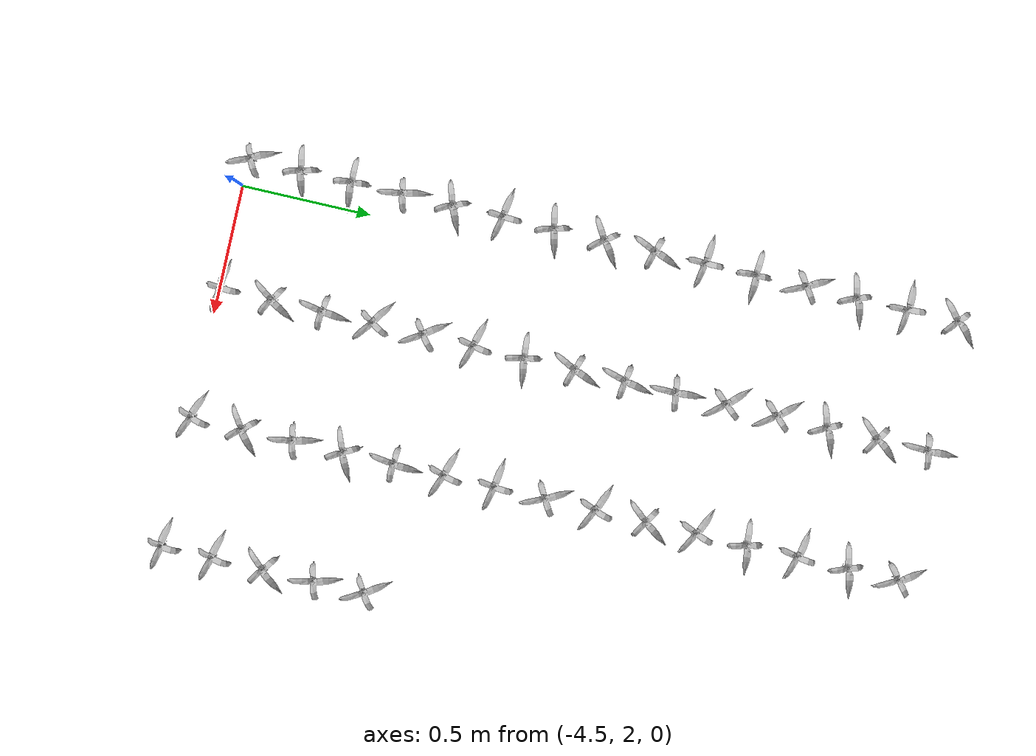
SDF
<sdf version="1.7">
 <world name="default">
  <model name="maize_-4.6_2.0250000000000004">
   <static>1</static>
   <link name="link">
    <inertial>
     <mass>0.2</mass>
     <inertia>
      <ixx>0.166667</ixx>
      <ixy>0</ixy>
      <ixz>0</ixz>
      <iyy>0.166667</iyy>
      <iyz>0</iyz>
      <izz>0.166667</izz>
     </inertia>
    </inertial>
    <collision name="collision">
     <geometry><mesh><uri>model://corn_3/meshes/corn.dae</uri><scale>0.25 0.25 0.25</scale></mesh></geometry>
     <surface>
      <friction><ode><mu>0</mu><mu2>0</mu2></ode></friction>
      <contact><ode><kp>0</kp><kd>0</kd><max_vel>0</max_vel><min_depth>0.002</min_depth></ode></contact>
     </surface>
    </collision>
    <visual name="visual">
     <geometry><mesh><uri>model://corn_3/meshes/corn.dae</uri><scale>0.25 0.25 0.25</scale></mesh></geometry>
    </visual>
    <velocity_decay><linear>0</linear><angular>0</angular></velocity_decay>
   </link>
   <pose>-4.6 2.025 0.05 0 -0 2.03613</pose>
  </model>
  <model name="maize_-4.6_2.2200000000000006">
   <static>1</static>
   <link name="link">
    <inertial>
     <mass>0.2</mass>
     <inertia>
      <ixx>0.166667</ixx>
      <ixy>0</ixy>
      <ixz>0</ixz>
      <iyy>0.166667</iyy>
      <iyz>0</iyz>
      <izz>0.166667</izz>
     </inertia>
    </inertial>
    <collision name="collision">
     <geometry><mesh><uri>model://corn_3/meshes/corn.dae</uri><scale>0.25 0.25 0.25</scale></mesh></geometry>
     <surface>
      <friction><ode><mu>0</mu><mu2>0</mu2></ode></friction>
      <contact><ode><kp>0</kp><kd>0</kd><max_vel>0</max_vel><min_depth>0.002</min_depth></ode></contact>
     </surface>
    </collision>
    <visual name="visual">
     <geometry><mesh><uri>model://corn_3/meshes/corn.dae</uri><scale>0.25 0.25 0.25</scale></mesh></geometry>
    </visual>
    <velocity_decay><linear>0</linear><angular>0</angular></velocity_decay>
   </link>
   <pose>-4.6 2.22 0.05 0 -0 0.292338</pose>
  </model>
  <model name="maize_-4.6_2.415">
   <static>1</static>
   <link name="link">
    <inertial>
     <mass>0.2</mass>
     <inertia>
      <ixx>0.166667</ixx>
      <ixy>0</ixy>
      <ixz>0</ixz>
      <iyy>0.166667</iyy>
      <iyz>0</iyz>
      <izz>0.166667</izz>
     </inertia>
    </inertial>
    <collision name="collision">
     <geometry><mesh><uri>model://corn_3/meshes/corn.dae</uri><scale>0.25 0.25 0.25</scale></mesh></geometry>
     <surface>
      <friction><ode><mu>0</mu><mu2>0</mu2></ode></friction>
      <contact><ode><kp>0</kp><kd>0</kd><max_vel>0</max_vel><min_depth>0.002</min_depth></ode></contact>
     </surface>
    </collision>
    <visual name="visual">
     <geometry><mesh><uri>model://corn_3/meshes/corn.dae</uri><scale>0.25 0.25 0.25</scale></mesh></geometry>
    </visual>
    <velocity_decay><linear>0</linear><angular>0</angular></velocity_decay>
   </link>
   <pose>-4.6 2.415 0.05 0 -0 0.102796</pose>
  </model>
  <model name="maize_-4.6_2.6100000000000003">
   <static>1</static>
   <link name="link">
    <inertial>
     <mass>0.2</mass>
     <inertia>
      <ixx>0.166667</ixx>
      <ixy>0</ixy>
      <ixz>0</ixz>
      <iyy>0.166667</iyy>
      <iyz>0</iyz>
      <izz>0.166667</izz>
     </inertia>
    </inertial>
    <collision name="collision">
     <geometry><mesh><uri>model://corn_3/meshes/corn.dae</uri><scale>0.25 0.25 0.25</scale></mesh></geometry>
     <surface>
      <friction><ode><mu>0</mu><mu2>0</mu2></ode></friction>
      <contact><ode><kp>0</kp><kd>0</kd><max_vel>0</max_vel><min_depth>0.002</min_depth></ode></contact>
     </surface>
    </collision>
    <visual name="visual">
     <geometry><mesh><uri>model://corn_3/meshes/corn.dae</uri><scale>0.25 0.25 0.25</scale></mesh></geometry>
    </visual>
    <velocity_decay><linear>0</linear><angular>0</angular></velocity_decay>
   </link>
   <pose>-4.6 2.61 0.05 0 -0 1.79182</pose>
  </model>
  <model name="maize_-4.6_2.8050000000000006">
   <static>1</static>
   <link name="link">
    <inertial>
     <mass>0.2</mass>
     <inertia>
      <ixx>0.166667</ixx>
      <ixy>0</ixy>
      <ixz>0</ixz>
      <iyy>0.166667</iyy>
      <iyz>0</iyz>
      <izz>0.166667</izz>
     </inertia>
    </inertial>
    <collision name="collision">
     <geometry><mesh><uri>model://corn_3/meshes/corn.dae</uri><scale>0.25 0.25 0.25</scale></mesh></geometry>
     <surface>
      <friction><ode><mu>0</mu><mu2>0</mu2></ode></friction>
      <contact><ode><kp>0</kp><kd>0</kd><max_vel>0</max_vel><min_depth>0.002</min_depth></ode></contact>
     </surface>
    </collision>
    <visual name="visual">
     <geometry><mesh><uri>model://corn_3/meshes/corn.dae</uri><scale>0.25 0.25 0.25</scale></mesh></geometry>
    </visual>
    <velocity_decay><linear>0</linear><angular>0</angular></velocity_decay>
   </link>
   <pose>-4.6 2.805 0.05 0 -0 0.430393</pose>
  </model>
  <model name="maize_-4.6_3.000000000000001">
   <static>1</static>
   <link name="link">
    <inertial>
     <mass>0.2</mass>
     <inertia>
      <ixx>0.166667</ixx>
      <ixy>0</ixy>
      <ixz>0</ixz>
      <iyy>0.166667</iyy>
      <iyz>0</iyz>
      <izz>0.166667</izz>
     </inertia>
    </inertial>
    <collision name="collision">
     <geometry><mesh><uri>model://corn_3/meshes/corn.dae</uri><scale>0.25 0.25 0.25</scale></mesh></geometry>
     <surface>
      <friction><ode><mu>0</mu><mu2>0</mu2></ode></friction>
      <contact><ode><kp>0</kp><kd>0</kd><max_vel>0</max_vel><min_depth>0.002</min_depth></ode></contact>
     </surface>
    </collision>
    <visual name="visual">
     <geometry><mesh><uri>model://corn_3/meshes/corn.dae</uri><scale>0.25 0.25 0.25</scale></mesh></geometry>
    </visual>
    <velocity_decay><linear>0</linear><angular>0</angular></velocity_decay>
   </link>
   <pose>-4.6 3 0.05 0 -0 3.01194</pose>
  </model>
  <model name="maize_-4.6_3.1950000000000003">
   <static>1</static>
   <link name="link">
    <inertial>
     <mass>0.2</mass>
     <inertia>
      <ixx>0.166667</ixx>
      <ixy>0</ixy>
      <ixz>0</ixz>
      <iyy>0.166667</iyy>
      <iyz>0</iyz>
      <izz>0.166667</izz>
     </inertia>
    </inertial>
    <collision name="collision">
     <geometry><mesh><uri>model://corn_3/meshes/corn.dae</uri><scale>0.25 0.25 0.25</scale></mesh></geometry>
     <surface>
      <friction><ode><mu>0</mu><mu2>0</mu2></ode></friction>
      <contact><ode><kp>0</kp><kd>0</kd><max_vel>0</max_vel><min_depth>0.002</min_depth></ode></contact>
     </surface>
    </collision>
    <visual name="visual">
     <geometry><mesh><uri>model://corn_3/meshes/corn.dae</uri><scale>0.25 0.25 0.25</scale></mesh></geometry>
    </visual>
    <velocity_decay><linear>0</linear><angular>0</angular></velocity_decay>
   </link>
   <pose>-4.6 3.195 0.05 0 -0 0.275425</pose>
  </model>
  <model name="maize_-4.6_3.3899999999999997">
   <static>1</static>
   <link name="link">
    <inertial>
     <mass>0.2</mass>
     <inertia>
      <ixx>0.166667</ixx>
      <ixy>0</ixy>
      <ixz>0</ixz>
      <iyy>0.166667</iyy>
      <iyz>0</iyz>
      <izz>0.166667</izz>
     </inertia>
    </inertial>
    <collision name="collision">
     <geometry><mesh><uri>model://corn_3/meshes/corn.dae</uri><scale>0.25 0.25 0.25</scale></mesh></geometry>
     <surface>
      <friction><ode><mu>0</mu><mu2>0</mu2></ode></friction>
      <contact><ode><kp>0</kp><kd>0</kd><max_vel>0</max_vel><min_depth>0.002</min_depth></ode></contact>
     </surface>
    </collision>
    <visual name="visual">
     <geometry><mesh><uri>model://corn_3/meshes/corn.dae</uri><scale>0.25 0.25 0.25</scale></mesh></geometry>
    </visual>
    <velocity_decay><linear>0</linear><angular>0</angular></velocity_decay>
   </link>
   <pose>-4.6 3.39 0.05 0 -0 0.641586</pose>
  </model>
  <model name="maize_-4.6_3.585">
   <static>1</static>
   <link name="link">
    <inertial>
     <mass>0.2</mass>
     <inertia>
      <ixx>0.166667</ixx>
      <ixy>0</ixy>
      <ixz>0</ixz>
      <iyy>0.166667</iyy>
      <iyz>0</iyz>
      <izz>0.166667</izz>
     </inertia>
    </inertial>
    <collision name="collision">
     <geometry><mesh><uri>model://corn_3/meshes/corn.dae</uri><scale>0.25 0.25 0.25</scale></mesh></geometry>
     <surface>
      <friction><ode><mu>0</mu><mu2>0</mu2></ode></friction>
      <contact><ode><kp>0</kp><kd>0</kd><max_vel>0</max_vel><min_depth>0.002</min_depth></ode></contact>
     </surface>
    </collision>
    <visual name="visual">
     <geometry><mesh><uri>model://corn_3/meshes/corn.dae</uri><scale>0.25 0.25 0.25</scale></mesh></geometry>
    </visual>
    <velocity_decay><linear>0</linear><angular>0</angular></velocity_decay>
   </link>
   <pose>-4.6 3.585 0.05 0 -0 1.2305</pose>
  </model>
  <model name="maize_-4.6_3.7800000000000002">
   <static>1</static>
   <link name="link">
    <inertial>
     <mass>0.2</mass>
     <inertia>
      <ixx>0.166667</ixx>
      <ixy>0</ixy>
      <ixz>0</ixz>
      <iyy>0.166667</iyy>
      <iyz>0</iyz>
      <izz>0.166667</izz>
     </inertia>
    </inertial>
    <collision name="collision">
     <geometry><mesh><uri>model://corn_3/meshes/corn.dae</uri><scale>0.25 0.25 0.25</scale></mesh></geometry>
     <surface>
      <friction><ode><mu>0</mu><mu2>0</mu2></ode></friction>
      <contact><ode><kp>0</kp><kd>0</kd><max_vel>0</max_vel><min_depth>0.002</min_depth></ode></contact>
     </surface>
    </collision>
    <visual name="visual">
     <geometry><mesh><uri>model://corn_3/meshes/corn.dae</uri><scale>0.25 0.25 0.25</scale></mesh></geometry>
    </visual>
    <velocity_decay><linear>0</linear><angular>0</angular></velocity_decay>
   </link>
   <pose>-4.6 3.78 0.05 0 -0 3.0599</pose>
  </model>
  <model name="maize_-4.6_3.9750000000000005">
   <static>1</static>
   <link name="link">
    <inertial>
     <mass>0.2</mass>
     <inertia>
      <ixx>0.166667</ixx>
      <ixy>0</ixy>
      <ixz>0</ixz>
      <iyy>0.166667</iyy>
      <iyz>0</iyz>
      <izz>0.166667</izz>
     </inertia>
    </inertial>
    <collision name="collision">
     <geometry><mesh><uri>model://corn_3/meshes/corn.dae</uri><scale>0.25 0.25 0.25</scale></mesh></geometry>
     <surface>
      <friction><ode><mu>0</mu><mu2>0</mu2></ode></friction>
      <contact><ode><kp>0</kp><kd>0</kd><max_vel>0</max_vel><min_depth>0.002</min_depth></ode></contact>
     </surface>
    </collision>
    <visual name="visual">
     <geometry><mesh><uri>model://corn_3/meshes/corn.dae</uri><scale>0.25 0.25 0.25</scale></mesh></geometry>
    </visual>
    <velocity_decay><linear>0</linear><angular>0</angular></velocity_decay>
   </link>
   <pose>-4.6 3.975 0.05 0 -0 0.019402</pose>
  </model>
  <model name="maize_-4.6_4.170000000000001">
   <static>1</static>
   <link name="link">
    <inertial>
     <mass>0.2</mass>
     <inertia>
      <ixx>0.166667</ixx>
      <ixy>0</ixy>
      <ixz>0</ixz>
      <iyy>0.166667</iyy>
      <iyz>0</iyz>
      <izz>0.166667</izz>
     </inertia>
    </inertial>
    <collision name="collision">
     <geometry><mesh><uri>model://corn_3/meshes/corn.dae</uri><scale>0.25 0.25 0.25</scale></mesh></geometry>
     <surface>
      <friction><ode><mu>0</mu><mu2>0</mu2></ode></friction>
      <contact><ode><kp>0</kp><kd>0</kd><max_vel>0</max_vel><min_depth>0.002</min_depth></ode></contact>
     </surface>
    </collision>
    <visual name="visual">
     <geometry><mesh><uri>model://corn_3/meshes/corn.dae</uri><scale>0.25 0.25 0.25</scale></mesh></geometry>
    </visual>
    <velocity_decay><linear>0</linear><angular>0</angular></velocity_decay>
   </link>
   <pose>-4.6 4.17 0.05 0 -0 2.08204</pose>
  </model>
  <model name="maize_-4.6_4.365000000000001">
   <static>1</static>
   <link name="link">
    <inertial>
     <mass>0.2</mass>
     <inertia>
      <ixx>0.166667</ixx>
      <ixy>0</ixy>
      <ixz>0</ixz>
      <iyy>0.166667</iyy>
      <iyz>0</iyz>
      <izz>0.166667</izz>
     </inertia>
    </inertial>
    <collision name="collision">
     <geometry><mesh><uri>model://corn_3/meshes/corn.dae</uri><scale>0.25 0.25 0.25</scale></mesh></geometry>
     <surface>
      <friction><ode><mu>0</mu><mu2>0</mu2></ode></friction>
      <contact><ode><kp>0</kp><kd>0</kd><max_vel>0</max_vel><min_depth>0.002</min_depth></ode></contact>
     </surface>
    </collision>
    <visual name="visual">
     <geometry><mesh><uri>model://corn_3/meshes/corn.dae</uri><scale>0.25 0.25 0.25</scale></mesh></geometry>
    </visual>
    <velocity_decay><linear>0</linear><angular>0</angular></velocity_decay>
   </link>
   <pose>-4.6 4.365 0.05 0 -0 0.353595</pose>
  </model>
  <model name="maize_-4.6_4.56">
   <static>1</static>
   <link name="link">
    <inertial>
     <mass>0.2</mass>
     <inertia>
      <ixx>0.166667</ixx>
      <ixy>0</ixy>
      <ixz>0</ixz>
      <iyy>0.166667</iyy>
      <iyz>0</iyz>
      <izz>0.166667</izz>
     </inertia>
    </inertial>
    <collision name="collision">
     <geometry><mesh><uri>model://corn_3/meshes/corn.dae</uri><scale>0.25 0.25 0.25</scale></mesh></geometry>
     <surface>
      <friction><ode><mu>0</mu><mu2>0</mu2></ode></friction>
      <contact><ode><kp>0</kp><kd>0</kd><max_vel>0</max_vel><min_depth>0.002</min_depth></ode></contact>
     </surface>
    </collision>
    <visual name="visual">
     <geometry><mesh><uri>model://corn_3/meshes/corn.dae</uri><scale>0.25 0.25 0.25</scale></mesh></geometry>
    </visual>
    <velocity_decay><linear>0</linear><angular>0</angular></velocity_decay>
   </link>
   <pose>-4.6 4.56 0.05 0 -0 3.13578</pose>
  </model>
  <model name="maize_-4.6_4.755">
   <static>1</static>
   <link name="link">
    <inertial>
     <mass>0.2</mass>
     <inertia>
      <ixx>0.166667</ixx>
      <ixy>0</ixy>
      <ixz>0</ixz>
      <iyy>0.166667</iyy>
      <iyz>0</iyz>
      <izz>0.166667</izz>
     </inertia>
    </inertial>
    <collision name="collision">
     <geometry><mesh><uri>model://corn_3/meshes/corn.dae</uri><scale>0.25 0.25 0.25</scale></mesh></geometry>
     <surface>
      <friction><ode><mu>0</mu><mu2>0</mu2></ode></friction>
      <contact><ode><kp>0</kp><kd>0</kd><max_vel>0</max_vel><min_depth>0.002</min_depth></ode></contact>
     </surface>
    </collision>
    <visual name="visual">
     <geometry><mesh><uri>model://corn_3/meshes/corn.dae</uri><scale>0.25 0.25 0.25</scale></mesh></geometry>
    </visual>
    <velocity_decay><linear>0</linear><angular>0</angular></velocity_decay>
   </link>
   <pose>-4.6 4.755 0.05 0 -0 0.784792</pose>
  </model>
  <model name="maize_-4.100375_2.0250000000000004">
   <static>1</static>
   <link name="link">
    <inertial>
     <mass>0.2</mass>
     <inertia>
      <ixx>0.166667</ixx>
      <ixy>0</ixy>
      <ixz>0</ixz>
      <iyy>0.166667</iyy>
      <iyz>0</iyz>
      <izz>0.166667</izz>
     </inertia>
    </inertial>
    <collision name="collision">
     <geometry><mesh><uri>model://corn_3/meshes/corn.dae</uri><scale>0.25 0.25 0.25</scale></mesh></geometry>
     <surface>
      <friction><ode><mu>0</mu><mu2>0</mu2></ode></friction>
      <contact><ode><kp>0</kp><kd>0</kd><max_vel>0</max_vel><min_depth>0.002</min_depth></ode></contact>
     </surface>
    </collision>
    <visual name="visual">
     <geometry><mesh><uri>model://corn_3/meshes/corn.dae</uri><scale>0.25 0.25 0.25</scale></mesh></geometry>
    </visual>
    <velocity_decay><linear>0</linear><angular>0</angular></velocity_decay>
   </link>
   <pose>-4.10037 2.025 0.05 0 -0 3.05292</pose>
  </model>
  <model name="maize_-4.100375_2.2200000000000006">
   <static>1</static>
   <link name="link">
    <inertial>
     <mass>0.2</mass>
     <inertia>
      <ixx>0.166667</ixx>
      <ixy>0</ixy>
      <ixz>0</ixz>
      <iyy>0.166667</iyy>
      <iyz>0</iyz>
      <izz>0.166667</izz>
     </inertia>
    </inertial>
    <collision name="collision">
     <geometry><mesh><uri>model://corn_3/meshes/corn.dae</uri><scale>0.25 0.25 0.25</scale></mesh></geometry>
     <surface>
      <friction><ode><mu>0</mu><mu2>0</mu2></ode></friction>
      <contact><ode><kp>0</kp><kd>0</kd><max_vel>0</max_vel><min_depth>0.002</min_depth></ode></contact>
     </surface>
    </collision>
    <visual name="visual">
     <geometry><mesh><uri>model://corn_3/meshes/corn.dae</uri><scale>0.25 0.25 0.25</scale></mesh></geometry>
    </visual>
    <velocity_decay><linear>0</linear><angular>0</angular></velocity_decay>
   </link>
   <pose>-4.10037 2.22 0.05 0 -0 1.03773</pose>
  </model>
  <model name="maize_-4.100375_2.415">
   <static>1</static>
   <link name="link">
    <inertial>
     <mass>0.2</mass>
     <inertia>
      <ixx>0.166667</ixx>
      <ixy>0</ixy>
      <ixz>0</ixz>
      <iyy>0.166667</iyy>
      <iyz>0</iyz>
      <izz>0.166667</izz>
     </inertia>
    </inertial>
    <collision name="collision">
     <geometry><mesh><uri>model://corn_3/meshes/corn.dae</uri><scale>0.25 0.25 0.25</scale></mesh></geometry>
     <surface>
      <friction><ode><mu>0</mu><mu2>0</mu2></ode></friction>
      <contact><ode><kp>0</kp><kd>0</kd><max_vel>0</max_vel><min_depth>0.002</min_depth></ode></contact>
     </surface>
    </collision>
    <visual name="visual">
     <geometry><mesh><uri>model://corn_3/meshes/corn.dae</uri><scale>0.25 0.25 0.25</scale></mesh></geometry>
    </visual>
    <velocity_decay><linear>0</linear><angular>0</angular></velocity_decay>
   </link>
   <pose>-4.10037 2.415 0.05 0 -0 1.47364</pose>
  </model>
  <model name="maize_-4.100375_2.6100000000000003">
   <static>1</static>
   <link name="link">
    <inertial>
     <mass>0.2</mass>
     <inertia>
      <ixx>0.166667</ixx>
      <ixy>0</ixy>
      <ixz>0</ixz>
      <iyy>0.166667</iyy>
      <iyz>0</iyz>
      <izz>0.166667</izz>
     </inertia>
    </inertial>
    <collision name="collision">
     <geometry><mesh><uri>model://corn_3/meshes/corn.dae</uri><scale>0.25 0.25 0.25</scale></mesh></geometry>
     <surface>
      <friction><ode><mu>0</mu><mu2>0</mu2></ode></friction>
      <contact><ode><kp>0</kp><kd>0</kd><max_vel>0</max_vel><min_depth>0.002</min_depth></ode></contact>
     </surface>
    </collision>
    <visual name="visual">
     <geometry><mesh><uri>model://corn_3/meshes/corn.dae</uri><scale>0.25 0.25 0.25</scale></mesh></geometry>
    </visual>
    <velocity_decay><linear>0</linear><angular>0</angular></velocity_decay>
   </link>
   <pose>-4.10037 2.61 0.05 0 -0 2.56701</pose>
  </model>
  <model name="maize_-4.100375_2.8050000000000006">
   <static>1</static>
   <link name="link">
    <inertial>
     <mass>0.2</mass>
     <inertia>
      <ixx>0.166667</ixx>
      <ixy>0</ixy>
      <ixz>0</ixz>
      <iyy>0.166667</iyy>
      <iyz>0</iyz>
      <izz>0.166667</izz>
     </inertia>
    </inertial>
    <collision name="collision">
     <geometry><mesh><uri>model://corn_3/meshes/corn.dae</uri><scale>0.25 0.25 0.25</scale></mesh></geometry>
     <surface>
      <friction><ode><mu>0</mu><mu2>0</mu2></ode></friction>
      <contact><ode><kp>0</kp><kd>0</kd><max_vel>0</max_vel><min_depth>0.002</min_depth></ode></contact>
     </surface>
    </collision>
    <visual name="visual">
     <geometry><mesh><uri>model://corn_3/meshes/corn.dae</uri><scale>0.25 0.25 0.25</scale></mesh></geometry>
    </visual>
    <velocity_decay><linear>0</linear><angular>0</angular></velocity_decay>
   </link>
   <pose>-4.10037 2.805 0.05 0 -0 2.21319</pose>
  </model>
  <model name="maize_-4.100375_3.000000000000001">
   <static>1</static>
   <link name="link">
    <inertial>
     <mass>0.2</mass>
     <inertia>
      <ixx>0.166667</ixx>
      <ixy>0</ixy>
      <ixz>0</ixz>
      <iyy>0.166667</iyy>
      <iyz>0</iyz>
      <izz>0.166667</izz>
     </inertia>
    </inertial>
    <collision name="collision">
     <geometry><mesh><uri>model://corn_3/meshes/corn.dae</uri><scale>0.25 0.25 0.25</scale></mesh></geometry>
     <surface>
      <friction><ode><mu>0</mu><mu2>0</mu2></ode></friction>
      <contact><ode><kp>0</kp><kd>0</kd><max_vel>0</max_vel><min_depth>0.002</min_depth></ode></contact>
     </surface>
    </collision>
    <visual name="visual">
     <geometry><mesh><uri>model://corn_3/meshes/corn.dae</uri><scale>0.25 0.25 0.25</scale></mesh></geometry>
    </visual>
    <velocity_decay><linear>0</linear><angular>0</angular></velocity_decay>
   </link>
   <pose>-4.10037 3 0.05 0 -0 2.9102</pose>
  </model>
  <model name="maize_-4.100375_3.1950000000000003">
   <static>1</static>
   <link name="link">
    <inertial>
     <mass>0.2</mass>
     <inertia>
      <ixx>0.166667</ixx>
      <ixy>0</ixy>
      <ixz>0</ixz>
      <iyy>0.166667</iyy>
      <iyz>0</iyz>
      <izz>0.166667</izz>
     </inertia>
    </inertial>
    <collision name="collision">
     <geometry><mesh><uri>model://corn_3/meshes/corn.dae</uri><scale>0.25 0.25 0.25</scale></mesh></geometry>
     <surface>
      <friction><ode><mu>0</mu><mu2>0</mu2></ode></friction>
      <contact><ode><kp>0</kp><kd>0</kd><max_vel>0</max_vel><min_depth>0.002</min_depth></ode></contact>
     </surface>
    </collision>
    <visual name="visual">
     <geometry><mesh><uri>model://corn_3/meshes/corn.dae</uri><scale>0.25 0.25 0.25</scale></mesh></geometry>
    </visual>
    <velocity_decay><linear>0</linear><angular>0</angular></velocity_decay>
   </link>
   <pose>-4.10037 3.195 0.05 0 -0 0.169667</pose>
  </model>
  <model name="maize_-4.100375_3.3899999999999997">
   <static>1</static>
   <link name="link">
    <inertial>
     <mass>0.2</mass>
     <inertia>
      <ixx>0.166667</ixx>
      <ixy>0</ixy>
      <ixz>0</ixz>
      <iyy>0.166667</iyy>
      <iyz>0</iyz>
      <izz>0.166667</izz>
     </inertia>
    </inertial>
    <collision name="collision">
     <geometry><mesh><uri>model://corn_3/meshes/corn.dae</uri><scale>0.25 0.25 0.25</scale></mesh></geometry>
     <surface>
      <friction><ode><mu>0</mu><mu2>0</mu2></ode></friction>
      <contact><ode><kp>0</kp><kd>0</kd><max_vel>0</max_vel><min_depth>0.002</min_depth></ode></contact>
     </surface>
    </collision>
    <visual name="visual">
     <geometry><mesh><uri>model://corn_3/meshes/corn.dae</uri><scale>0.25 0.25 0.25</scale></mesh></geometry>
    </visual>
    <velocity_decay><linear>0</linear><angular>0</angular></velocity_decay>
   </link>
   <pose>-4.10037 3.39 0.05 0 -0 1.19928</pose>
  </model>
  <model name="maize_-4.100375_3.585">
   <static>1</static>
   <link name="link">
    <inertial>
     <mass>0.2</mass>
     <inertia>
      <ixx>0.166667</ixx>
      <ixy>0</ixy>
      <ixz>0</ixz>
      <iyy>0.166667</iyy>
      <iyz>0</iyz>
      <izz>0.166667</izz>
     </inertia>
    </inertial>
    <collision name="collision">
     <geometry><mesh><uri>model://corn_3/meshes/corn.dae</uri><scale>0.25 0.25 0.25</scale></mesh></geometry>
     <surface>
      <friction><ode><mu>0</mu><mu2>0</mu2></ode></friction>
      <contact><ode><kp>0</kp><kd>0</kd><max_vel>0</max_vel><min_depth>0.002</min_depth></ode></contact>
     </surface>
    </collision>
    <visual name="visual">
     <geometry><mesh><uri>model://corn_3/meshes/corn.dae</uri><scale>0.25 0.25 0.25</scale></mesh></geometry>
    </visual>
    <velocity_decay><linear>0</linear><angular>0</angular></velocity_decay>
   </link>
   <pose>-4.10037 3.585 0.05 0 -0 1.378</pose>
  </model>
  <model name="maize_-4.100375_3.7800000000000002">
   <static>1</static>
   <link name="link">
    <inertial>
     <mass>0.2</mass>
     <inertia>
      <ixx>0.166667</ixx>
      <ixy>0</ixy>
      <ixz>0</ixz>
      <iyy>0.166667</iyy>
      <iyz>0</iyz>
      <izz>0.166667</izz>
     </inertia>
    </inertial>
    <collision name="collision">
     <geometry><mesh><uri>model://corn_3/meshes/corn.dae</uri><scale>0.25 0.25 0.25</scale></mesh></geometry>
     <surface>
      <friction><ode><mu>0</mu><mu2>0</mu2></ode></friction>
      <contact><ode><kp>0</kp><kd>0</kd><max_vel>0</max_vel><min_depth>0.002</min_depth></ode></contact>
     </surface>
    </collision>
    <visual name="visual">
     <geometry><mesh><uri>model://corn_3/meshes/corn.dae</uri><scale>0.25 0.25 0.25</scale></mesh></geometry>
    </visual>
    <velocity_decay><linear>0</linear><angular>0</angular></velocity_decay>
   </link>
   <pose>-4.10037 3.78 0.05 0 -0 1.65521</pose>
  </model>
  <model name="maize_-4.100375_3.9750000000000005">
   <static>1</static>
   <link name="link">
    <inertial>
     <mass>0.2</mass>
     <inertia>
      <ixx>0.166667</ixx>
      <ixy>0</ixy>
      <ixz>0</ixz>
      <iyy>0.166667</iyy>
      <iyz>0</iyz>
      <izz>0.166667</izz>
     </inertia>
    </inertial>
    <collision name="collision">
     <geometry><mesh><uri>model://corn_3/meshes/corn.dae</uri><scale>0.25 0.25 0.25</scale></mesh></geometry>
     <surface>
      <friction><ode><mu>0</mu><mu2>0</mu2></ode></friction>
      <contact><ode><kp>0</kp><kd>0</kd><max_vel>0</max_vel><min_depth>0.002</min_depth></ode></contact>
     </surface>
    </collision>
    <visual name="visual">
     <geometry><mesh><uri>model://corn_3/meshes/corn.dae</uri><scale>0.25 0.25 0.25</scale></mesh></geometry>
    </visual>
    <velocity_decay><linear>0</linear><angular>0</angular></velocity_decay>
   </link>
   <pose>-4.10037 3.975 0.05 0 -0 2.35844</pose>
  </model>
  <model name="maize_-4.100375_4.170000000000001">
   <static>1</static>
   <link name="link">
    <inertial>
     <mass>0.2</mass>
     <inertia>
      <ixx>0.166667</ixx>
      <ixy>0</ixy>
      <ixz>0</ixz>
      <iyy>0.166667</iyy>
      <iyz>0</iyz>
      <izz>0.166667</izz>
     </inertia>
    </inertial>
    <collision name="collision">
     <geometry><mesh><uri>model://corn_3/meshes/corn.dae</uri><scale>0.25 0.25 0.25</scale></mesh></geometry>
     <surface>
      <friction><ode><mu>0</mu><mu2>0</mu2></ode></friction>
      <contact><ode><kp>0</kp><kd>0</kd><max_vel>0</max_vel><min_depth>0.002</min_depth></ode></contact>
     </surface>
    </collision>
    <visual name="visual">
     <geometry><mesh><uri>model://corn_3/meshes/corn.dae</uri><scale>0.25 0.25 0.25</scale></mesh></geometry>
    </visual>
    <velocity_decay><linear>0</linear><angular>0</angular></velocity_decay>
   </link>
   <pose>-4.10037 4.17 0.05 0 -0 2.30101</pose>
  </model>
  <model name="maize_-4.100375_4.365000000000001">
   <static>1</static>
   <link name="link">
    <inertial>
     <mass>0.2</mass>
     <inertia>
      <ixx>0.166667</ixx>
      <ixy>0</ixy>
      <ixz>0</ixz>
      <iyy>0.166667</iyy>
      <iyz>0</iyz>
      <izz>0.166667</izz>
     </inertia>
    </inertial>
    <collision name="collision">
     <geometry><mesh><uri>model://corn_3/meshes/corn.dae</uri><scale>0.25 0.25 0.25</scale></mesh></geometry>
     <surface>
      <friction><ode><mu>0</mu><mu2>0</mu2></ode></friction>
      <contact><ode><kp>0</kp><kd>0</kd><max_vel>0</max_vel><min_depth>0.002</min_depth></ode></contact>
     </surface>
    </collision>
    <visual name="visual">
     <geometry><mesh><uri>model://corn_3/meshes/corn.dae</uri><scale>0.25 0.25 0.25</scale></mesh></geometry>
    </visual>
    <velocity_decay><linear>0</linear><angular>0</angular></velocity_decay>
   </link>
   <pose>-4.10037 4.365 0.05 0 -0 0.407161</pose>
  </model>
  <model name="maize_-4.100375_4.56">
   <static>1</static>
   <link name="link">
    <inertial>
     <mass>0.2</mass>
     <inertia>
      <ixx>0.166667</ixx>
      <ixy>0</ixy>
      <ixz>0</ixz>
      <iyy>0.166667</iyy>
      <iyz>0</iyz>
      <izz>0.166667</izz>
     </inertia>
    </inertial>
    <collision name="collision">
     <geometry><mesh><uri>model://corn_3/meshes/corn.dae</uri><scale>0.25 0.25 0.25</scale></mesh></geometry>
     <surface>
      <friction><ode><mu>0</mu><mu2>0</mu2></ode></friction>
      <contact><ode><kp>0</kp><kd>0</kd><max_vel>0</max_vel><min_depth>0.002</min_depth></ode></contact>
     </surface>
    </collision>
    <visual name="visual">
     <geometry><mesh><uri>model://corn_3/meshes/corn.dae</uri><scale>0.25 0.25 0.25</scale></mesh></geometry>
    </visual>
    <velocity_decay><linear>0</linear><angular>0</angular></velocity_decay>
   </link>
   <pose>-4.10037 4.56 0.05 0 -0 0.910423</pose>
  </model>
  <model name="maize_-4.100375_4.755">
   <static>1</static>
   <link name="link">
    <inertial>
     <mass>0.2</mass>
     <inertia>
      <ixx>0.166667</ixx>
      <ixy>0</ixy>
      <ixz>0</ixz>
      <iyy>0.166667</iyy>
      <iyz>0</iyz>
      <izz>0.166667</izz>
     </inertia>
    </inertial>
    <collision name="collision">
     <geometry><mesh><uri>model://corn_3/meshes/corn.dae</uri><scale>0.25 0.25 0.25</scale></mesh></geometry>
     <surface>
      <friction><ode><mu>0</mu><mu2>0</mu2></ode></friction>
      <contact><ode><kp>0</kp><kd>0</kd><max_vel>0</max_vel><min_depth>0.002</min_depth></ode></contact>
     </surface>
    </collision>
    <visual name="visual">
     <geometry><mesh><uri>model://corn_3/meshes/corn.dae</uri><scale>0.25 0.25 0.25</scale></mesh></geometry>
    </visual>
    <velocity_decay><linear>0</linear><angular>0</angular></velocity_decay>
   </link>
   <pose>-4.10037 4.755 0.05 0 -0 1.6198</pose>
  </model>
  <model name="maize_-3.6014994375_2.0250000000000004">
   <static>1</static>
   <link name="link">
    <inertial>
     <mass>0.2</mass>
     <inertia>
      <ixx>0.166667</ixx>
      <ixy>0</ixy>
      <ixz>0</ixz>
      <iyy>0.166667</iyy>
      <iyz>0</iyz>
      <izz>0.166667</izz>
     </inertia>
    </inertial>
    <collision name="collision">
     <geometry><mesh><uri>model://corn_3/meshes/corn.dae</uri><scale>0.25 0.25 0.25</scale></mesh></geometry>
     <surface>
      <friction><ode><mu>0</mu><mu2>0</mu2></ode></friction>
      <contact><ode><kp>0</kp><kd>0</kd><max_vel>0</max_vel><min_depth>0.002</min_depth></ode></contact>
     </surface>
    </collision>
    <visual name="visual">
     <geometry><mesh><uri>model://corn_3/meshes/corn.dae</uri><scale>0.25 0.25 0.25</scale></mesh></geometry>
    </visual>
    <velocity_decay><linear>0</linear><angular>0</angular></velocity_decay>
   </link>
   <pose>-3.6015 2.025 0.05 0 -0 2.82325</pose>
  </model>
  <model name="maize_-3.6014994375_2.2200000000000006">
   <static>1</static>
   <link name="link">
    <inertial>
     <mass>0.2</mass>
     <inertia>
      <ixx>0.166667</ixx>
      <ixy>0</ixy>
      <ixz>0</ixz>
      <iyy>0.166667</iyy>
      <iyz>0</iyz>
      <izz>0.166667</izz>
     </inertia>
    </inertial>
    <collision name="collision">
     <geometry><mesh><uri>model://corn_3/meshes/corn.dae</uri><scale>0.25 0.25 0.25</scale></mesh></geometry>
     <surface>
      <friction><ode><mu>0</mu><mu2>0</mu2></ode></friction>
      <contact><ode><kp>0</kp><kd>0</kd><max_vel>0</max_vel><min_depth>0.002</min_depth></ode></contact>
     </surface>
    </collision>
    <visual name="visual">
     <geometry><mesh><uri>model://corn_3/meshes/corn.dae</uri><scale>0.25 0.25 0.25</scale></mesh></geometry>
    </visual>
    <velocity_decay><linear>0</linear><angular>0</angular></velocity_decay>
   </link>
   <pose>-3.6015 2.22 0.05 0 -0 0.69792</pose>
  </model>
  <model name="maize_-3.6014994375_2.415">
   <static>1</static>
   <link name="link">
    <inertial>
     <mass>0.2</mass>
     <inertia>
      <ixx>0.166667</ixx>
      <ixy>0</ixy>
      <ixz>0</ixz>
      <iyy>0.166667</iyy>
      <iyz>0</iyz>
      <izz>0.166667</izz>
     </inertia>
    </inertial>
    <collision name="collision">
     <geometry><mesh><uri>model://corn_3/meshes/corn.dae</uri><scale>0.25 0.25 0.25</scale></mesh></geometry>
     <surface>
      <friction><ode><mu>0</mu><mu2>0</mu2></ode></friction>
      <contact><ode><kp>0</kp><kd>0</kd><max_vel>0</max_vel><min_depth>0.002</min_depth></ode></contact>
     </surface>
    </collision>
    <visual name="visual">
     <geometry><mesh><uri>model://corn_3/meshes/corn.dae</uri><scale>0.25 0.25 0.25</scale></mesh></geometry>
    </visual>
    <velocity_decay><linear>0</linear><angular>0</angular></velocity_decay>
   </link>
   <pose>-3.6015 2.415 0.05 0 -0 1.82761</pose>
  </model>
  <model name="maize_-3.6014994375_2.6100000000000003">
   <static>1</static>
   <link name="link">
    <inertial>
     <mass>0.2</mass>
     <inertia>
      <ixx>0.166667</ixx>
      <ixy>0</ixy>
      <ixz>0</ixz>
      <iyy>0.166667</iyy>
      <iyz>0</iyz>
      <izz>0.166667</izz>
     </inertia>
    </inertial>
    <collision name="collision">
     <geometry><mesh><uri>model://corn_3/meshes/corn.dae</uri><scale>0.25 0.25 0.25</scale></mesh></geometry>
     <surface>
      <friction><ode><mu>0</mu><mu2>0</mu2></ode></friction>
      <contact><ode><kp>0</kp><kd>0</kd><max_vel>0</max_vel><min_depth>0.002</min_depth></ode></contact>
     </surface>
    </collision>
    <visual name="visual">
     <geometry><mesh><uri>model://corn_3/meshes/corn.dae</uri><scale>0.25 0.25 0.25</scale></mesh></geometry>
    </visual>
    <velocity_decay><linear>0</linear><angular>0</angular></velocity_decay>
   </link>
   <pose>-3.6015 2.61 0.05 0 -0 0.475973</pose>
  </model>
  <model name="maize_-3.6014994375_2.8050000000000006">
   <static>1</static>
   <link name="link">
    <inertial>
     <mass>0.2</mass>
     <inertia>
      <ixx>0.166667</ixx>
      <ixy>0</ixy>
      <ixz>0</ixz>
      <iyy>0.166667</iyy>
      <iyz>0</iyz>
      <izz>0.166667</izz>
     </inertia>
    </inertial>
    <collision name="collision">
     <geometry><mesh><uri>model://corn_3/meshes/corn.dae</uri><scale>0.25 0.25 0.25</scale></mesh></geometry>
     <surface>
      <friction><ode><mu>0</mu><mu2>0</mu2></ode></friction>
      <contact><ode><kp>0</kp><kd>0</kd><max_vel>0</max_vel><min_depth>0.002</min_depth></ode></contact>
     </surface>
    </collision>
    <visual name="visual">
     <geometry><mesh><uri>model://corn_3/meshes/corn.dae</uri><scale>0.25 0.25 0.25</scale></mesh></geometry>
    </visual>
    <velocity_decay><linear>0</linear><angular>0</angular></velocity_decay>
   </link>
   <pose>-3.6015 2.805 0.05 0 -0 1.525</pose>
  </model>
  <model name="maize_-3.6014994375_3.000000000000001">
   <static>1</static>
   <link name="link">
    <inertial>
     <mass>0.2</mass>
     <inertia>
      <ixx>0.166667</ixx>
      <ixy>0</ixy>
      <ixz>0</ixz>
      <iyy>0.166667</iyy>
      <iyz>0</iyz>
      <izz>0.166667</izz>
     </inertia>
    </inertial>
    <collision name="collision">
     <geometry><mesh><uri>model://corn_3/meshes/corn.dae</uri><scale>0.25 0.25 0.25</scale></mesh></geometry>
     <surface>
      <friction><ode><mu>0</mu><mu2>0</mu2></ode></friction>
      <contact><ode><kp>0</kp><kd>0</kd><max_vel>0</max_vel><min_depth>0.002</min_depth></ode></contact>
     </surface>
    </collision>
    <visual name="visual">
     <geometry><mesh><uri>model://corn_3/meshes/corn.dae</uri><scale>0.25 0.25 0.25</scale></mesh></geometry>
    </visual>
    <velocity_decay><linear>0</linear><angular>0</angular></velocity_decay>
   </link>
   <pose>-3.6015 3 0.05 0 -0 2.86046</pose>
  </model>
  <model name="maize_-3.6014994375_3.1950000000000003">
   <static>1</static>
   <link name="link">
    <inertial>
     <mass>0.2</mass>
     <inertia>
      <ixx>0.166667</ixx>
      <ixy>0</ixy>
      <ixz>0</ixz>
      <iyy>0.166667</iyy>
      <iyz>0</iyz>
      <izz>0.166667</izz>
     </inertia>
    </inertial>
    <collision name="collision">
     <geometry><mesh><uri>model://corn_3/meshes/corn.dae</uri><scale>0.25 0.25 0.25</scale></mesh></geometry>
     <surface>
      <friction><ode><mu>0</mu><mu2>0</mu2></ode></friction>
      <contact><ode><kp>0</kp><kd>0</kd><max_vel>0</max_vel><min_depth>0.002</min_depth></ode></contact>
     </surface>
    </collision>
    <visual name="visual">
     <geometry><mesh><uri>model://corn_3/meshes/corn.dae</uri><scale>0.25 0.25 0.25</scale></mesh></geometry>
    </visual>
    <velocity_decay><linear>0</linear><angular>0</angular></velocity_decay>
   </link>
   <pose>-3.6015 3.195 0.05 0 -0 3.02154</pose>
  </model>
  <model name="maize_-3.6014994375_3.3899999999999997">
   <static>1</static>
   <link name="link">
    <inertial>
     <mass>0.2</mass>
     <inertia>
      <ixx>0.166667</ixx>
      <ixy>0</ixy>
      <ixz>0</ixz>
      <iyy>0.166667</iyy>
      <iyz>0</iyz>
      <izz>0.166667</izz>
     </inertia>
    </inertial>
    <collision name="collision">
     <geometry><mesh><uri>model://corn_3/meshes/corn.dae</uri><scale>0.25 0.25 0.25</scale></mesh></geometry>
     <surface>
      <friction><ode><mu>0</mu><mu2>0</mu2></ode></friction>
      <contact><ode><kp>0</kp><kd>0</kd><max_vel>0</max_vel><min_depth>0.002</min_depth></ode></contact>
     </surface>
    </collision>
    <visual name="visual">
     <geometry><mesh><uri>model://corn_3/meshes/corn.dae</uri><scale>0.25 0.25 0.25</scale></mesh></geometry>
    </visual>
    <velocity_decay><linear>0</linear><angular>0</angular></velocity_decay>
   </link>
   <pose>-3.6015 3.39 0.05 0 -0 2.08148</pose>
  </model>
  <model name="maize_-3.6014994375_3.585">
   <static>1</static>
   <link name="link">
    <inertial>
     <mass>0.2</mass>
     <inertia>
      <ixx>0.166667</ixx>
      <ixy>0</ixy>
      <ixz>0</ixz>
      <iyy>0.166667</iyy>
      <iyz>0</iyz>
      <izz>0.166667</izz>
     </inertia>
    </inertial>
    <collision name="collision">
     <geometry><mesh><uri>model://corn_3/meshes/corn.dae</uri><scale>0.25 0.25 0.25</scale></mesh></geometry>
     <surface>
      <friction><ode><mu>0</mu><mu2>0</mu2></ode></friction>
      <contact><ode><kp>0</kp><kd>0</kd><max_vel>0</max_vel><min_depth>0.002</min_depth></ode></contact>
     </surface>
    </collision>
    <visual name="visual">
     <geometry><mesh><uri>model://corn_3/meshes/corn.dae</uri><scale>0.25 0.25 0.25</scale></mesh></geometry>
    </visual>
    <velocity_decay><linear>0</linear><angular>0</angular></velocity_decay>
   </link>
   <pose>-3.6015 3.585 0.05 0 -0 2.77042</pose>
  </model>
  <model name="maize_-3.6014994375_3.7800000000000002">
   <static>1</static>
   <link name="link">
    <inertial>
     <mass>0.2</mass>
     <inertia>
      <ixx>0.166667</ixx>
      <ixy>0</ixy>
      <ixz>0</ixz>
      <iyy>0.166667</iyy>
      <iyz>0</iyz>
      <izz>0.166667</izz>
     </inertia>
    </inertial>
    <collision name="collision">
     <geometry><mesh><uri>model://corn_3/meshes/corn.dae</uri><scale>0.25 0.25 0.25</scale></mesh></geometry>
     <surface>
      <friction><ode><mu>0</mu><mu2>0</mu2></ode></friction>
      <contact><ode><kp>0</kp><kd>0</kd><max_vel>0</max_vel><min_depth>0.002</min_depth></ode></contact>
     </surface>
    </collision>
    <visual name="visual">
     <geometry><mesh><uri>model://corn_3/meshes/corn.dae</uri><scale>0.25 0.25 0.25</scale></mesh></geometry>
    </visual>
    <velocity_decay><linear>0</linear><angular>0</angular></velocity_decay>
   </link>
   <pose>-3.6015 3.78 0.05 0 -0 0.955489</pose>
  </model>
  <model name="maize_-3.6014994375_3.9750000000000005">
   <static>1</static>
   <link name="link">
    <inertial>
     <mass>0.2</mass>
     <inertia>
      <ixx>0.166667</ixx>
      <ixy>0</ixy>
      <ixz>0</ixz>
      <iyy>0.166667</iyy>
      <iyz>0</iyz>
      <izz>0.166667</izz>
     </inertia>
    </inertial>
    <collision name="collision">
     <geometry><mesh><uri>model://corn_3/meshes/corn.dae</uri><scale>0.25 0.25 0.25</scale></mesh></geometry>
     <surface>
      <friction><ode><mu>0</mu><mu2>0</mu2></ode></friction>
      <contact><ode><kp>0</kp><kd>0</kd><max_vel>0</max_vel><min_depth>0.002</min_depth></ode></contact>
     </surface>
    </collision>
    <visual name="visual">
     <geometry><mesh><uri>model://corn_3/meshes/corn.dae</uri><scale>0.25 0.25 0.25</scale></mesh></geometry>
    </visual>
    <velocity_decay><linear>0</linear><angular>0</angular></velocity_decay>
   </link>
   <pose>-3.6015 3.975 0.05 0 -0 2.73404</pose>
  </model>
  <model name="maize_-3.6014994375_4.170000000000001">
   <static>1</static>
   <link name="link">
    <inertial>
     <mass>0.2</mass>
     <inertia>
      <ixx>0.166667</ixx>
      <ixy>0</ixy>
      <ixz>0</ixz>
      <iyy>0.166667</iyy>
      <iyz>0</iyz>
      <izz>0.166667</izz>
     </inertia>
    </inertial>
    <collision name="collision">
     <geometry><mesh><uri>model://corn_3/meshes/corn.dae</uri><scale>0.25 0.25 0.25</scale></mesh></geometry>
     <surface>
      <friction><ode><mu>0</mu><mu2>0</mu2></ode></friction>
      <contact><ode><kp>0</kp><kd>0</kd><max_vel>0</max_vel><min_depth>0.002</min_depth></ode></contact>
     </surface>
    </collision>
    <visual name="visual">
     <geometry><mesh><uri>model://corn_3/meshes/corn.dae</uri><scale>0.25 0.25 0.25</scale></mesh></geometry>
    </visual>
    <velocity_decay><linear>0</linear><angular>0</angular></velocity_decay>
   </link>
   <pose>-3.6015 4.17 0.05 0 -0 0.171267</pose>
  </model>
  <model name="maize_-3.6014994375_4.365000000000001">
   <static>1</static>
   <link name="link">
    <inertial>
     <mass>0.2</mass>
     <inertia>
      <ixx>0.166667</ixx>
      <ixy>0</ixy>
      <ixz>0</ixz>
      <iyy>0.166667</iyy>
      <iyz>0</iyz>
      <izz>0.166667</izz>
     </inertia>
    </inertial>
    <collision name="collision">
     <geometry><mesh><uri>model://corn_3/meshes/corn.dae</uri><scale>0.25 0.25 0.25</scale></mesh></geometry>
     <surface>
      <friction><ode><mu>0</mu><mu2>0</mu2></ode></friction>
      <contact><ode><kp>0</kp><kd>0</kd><max_vel>0</max_vel><min_depth>0.002</min_depth></ode></contact>
     </surface>
    </collision>
    <visual name="visual">
     <geometry><mesh><uri>model://corn_3/meshes/corn.dae</uri><scale>0.25 0.25 0.25</scale></mesh></geometry>
    </visual>
    <velocity_decay><linear>0</linear><angular>0</angular></velocity_decay>
   </link>
   <pose>-3.6015 4.365 0.05 0 -0 2.93968</pose>
  </model>
  <model name="maize_-3.6014994375_4.56">
   <static>1</static>
   <link name="link">
    <inertial>
     <mass>0.2</mass>
     <inertia>
      <ixx>0.166667</ixx>
      <ixy>0</ixy>
      <ixz>0</ixz>
      <iyy>0.166667</iyy>
      <iyz>0</iyz>
      <izz>0.166667</izz>
     </inertia>
    </inertial>
    <collision name="collision">
     <geometry><mesh><uri>model://corn_3/meshes/corn.dae</uri><scale>0.25 0.25 0.25</scale></mesh></geometry>
     <surface>
      <friction><ode><mu>0</mu><mu2>0</mu2></ode></friction>
      <contact><ode><kp>0</kp><kd>0</kd><max_vel>0</max_vel><min_depth>0.002</min_depth></ode></contact>
     </surface>
    </collision>
    <visual name="visual">
     <geometry><mesh><uri>model://corn_3/meshes/corn.dae</uri><scale>0.25 0.25 0.25</scale></mesh></geometry>
    </visual>
    <velocity_decay><linear>0</linear><angular>0</angular></velocity_decay>
   </link>
   <pose>-3.6015 4.56 0.05 0 -0 0.27894</pose>
  </model>
  <model name="maize_-3.6014994375_4.755">
   <static>1</static>
   <link name="link">
    <inertial>
     <mass>0.2</mass>
     <inertia>
      <ixx>0.166667</ixx>
      <ixy>0</ixy>
      <ixz>0</ixz>
      <iyy>0.166667</iyy>
      <iyz>0</iyz>
      <izz>0.166667</izz>
     </inertia>
    </inertial>
    <collision name="collision">
     <geometry><mesh><uri>model://corn_3/meshes/corn.dae</uri><scale>0.25 0.25 0.25</scale></mesh></geometry>
     <surface>
      <friction><ode><mu>0</mu><mu2>0</mu2></ode></friction>
      <contact><ode><kp>0</kp><kd>0</kd><max_vel>0</max_vel><min_depth>0.002</min_depth></ode></contact>
     </surface>
    </collision>
    <visual name="visual">
     <geometry><mesh><uri>model://corn_3/meshes/corn.dae</uri><scale>0.25 0.25 0.25</scale></mesh></geometry>
    </visual>
    <velocity_decay><linear>0</linear><angular>0</angular></velocity_decay>
   </link>
   <pose>-3.6015 4.755 0.05 0 -0 2.16117</pose>
  </model>
  <model name="maize_-3.1033724693828124_2.0250000000000004">
   <static>1</static>
   <link name="link">
    <inertial>
     <mass>0.2</mass>
     <inertia>
      <ixx>0.166667</ixx>
      <ixy>0</ixy>
      <ixz>0</ixz>
      <iyy>0.166667</iyy>
      <iyz>0</iyz>
      <izz>0.166667</izz>
     </inertia>
    </inertial>
    <collision name="collision">
     <geometry><mesh><uri>model://corn_3/meshes/corn.dae</uri><scale>0.25 0.25 0.25</scale></mesh></geometry>
     <surface>
      <friction><ode><mu>0</mu><mu2>0</mu2></ode></friction>
      <contact><ode><kp>0</kp><kd>0</kd><max_vel>0</max_vel><min_depth>0.002</min_depth></ode></contact>
     </surface>
    </collision>
    <visual name="visual">
     <geometry><mesh><uri>model://corn_3/meshes/corn.dae</uri><scale>0.25 0.25 0.25</scale></mesh></geometry>
    </visual>
    <velocity_decay><linear>0</linear><angular>0</angular></velocity_decay>
   </link>
   <pose>-3.10337 2.025 0.05 0 -0 3.02974</pose>
  </model>
  <model name="maize_-3.1033724693828124_2.2200000000000006">
   <static>1</static>
   <link name="link">
    <inertial>
     <mass>0.2</mass>
     <inertia>
      <ixx>0.166667</ixx>
      <ixy>0</ixy>
      <ixz>0</ixz>
      <iyy>0.166667</iyy>
      <iyz>0</iyz>
      <izz>0.166667</izz>
     </inertia>
    </inertial>
    <collision name="collision">
     <geometry><mesh><uri>model://corn_3/meshes/corn.dae</uri><scale>0.25 0.25 0.25</scale></mesh></geometry>
     <surface>
      <friction><ode><mu>0</mu><mu2>0</mu2></ode></friction>
      <contact><ode><kp>0</kp><kd>0</kd><max_vel>0</max_vel><min_depth>0.002</min_depth></ode></contact>
     </surface>
    </collision>
    <visual name="visual">
     <geometry><mesh><uri>model://corn_3/meshes/corn.dae</uri><scale>0.25 0.25 0.25</scale></mesh></geometry>
    </visual>
    <velocity_decay><linear>0</linear><angular>0</angular></velocity_decay>
   </link>
   <pose>-3.10337 2.22 0.05 0 -0 2.94164</pose>
  </model>
  <model name="maize_-3.1033724693828124_2.415">
   <static>1</static>
   <link name="link">
    <inertial>
     <mass>0.2</mass>
     <inertia>
      <ixx>0.166667</ixx>
      <ixy>0</ixy>
      <ixz>0</ixz>
      <iyy>0.166667</iyy>
      <iyz>0</iyz>
      <izz>0.166667</izz>
     </inertia>
    </inertial>
    <collision name="collision">
     <geometry><mesh><uri>model://corn_3/meshes/corn.dae</uri><scale>0.25 0.25 0.25</scale></mesh></geometry>
     <surface>
      <friction><ode><mu>0</mu><mu2>0</mu2></ode></friction>
      <contact><ode><kp>0</kp><kd>0</kd><max_vel>0</max_vel><min_depth>0.002</min_depth></ode></contact>
     </surface>
    </collision>
    <visual name="visual">
     <geometry><mesh><uri>model://corn_3/meshes/corn.dae</uri><scale>0.25 0.25 0.25</scale></mesh></geometry>
    </visual>
    <velocity_decay><linear>0</linear><angular>0</angular></velocity_decay>
   </link>
   <pose>-3.10337 2.415 0.05 0 -0 0.919892</pose>
  </model>
  <model name="maize_-3.1033724693828124_2.6100000000000003">
   <static>1</static>
   <link name="link">
    <inertial>
     <mass>0.2</mass>
     <inertia>
      <ixx>0.166667</ixx>
      <ixy>0</ixy>
      <ixz>0</ixz>
      <iyy>0.166667</iyy>
      <iyz>0</iyz>
      <izz>0.166667</izz>
     </inertia>
    </inertial>
    <collision name="collision">
     <geometry><mesh><uri>model://corn_3/meshes/corn.dae</uri><scale>0.25 0.25 0.25</scale></mesh></geometry>
     <surface>
      <friction><ode><mu>0</mu><mu2>0</mu2></ode></friction>
      <contact><ode><kp>0</kp><kd>0</kd><max_vel>0</max_vel><min_depth>0.002</min_depth></ode></contact>
     </surface>
    </collision>
    <visual name="visual">
     <geometry><mesh><uri>model://corn_3/meshes/corn.dae</uri><scale>0.25 0.25 0.25</scale></mesh></geometry>
    </visual>
    <velocity_decay><linear>0</linear><angular>0</angular></velocity_decay>
   </link>
   <pose>-3.10337 2.61 0.05 0 -0 1.88029</pose>
  </model>
  <model name="maize_-3.1033724693828124_2.8050000000000006">
   <static>1</static>
   <link name="link">
    <inertial>
     <mass>0.2</mass>
     <inertia>
      <ixx>0.166667</ixx>
      <ixy>0</ixy>
      <ixz>0</ixz>
      <iyy>0.166667</iyy>
      <iyz>0</iyz>
      <izz>0.166667</izz>
     </inertia>
    </inertial>
    <collision name="collision">
     <geometry><mesh><uri>model://corn_3/meshes/corn.dae</uri><scale>0.25 0.25 0.25</scale></mesh></geometry>
     <surface>
      <friction><ode><mu>0</mu><mu2>0</mu2></ode></friction>
      <contact><ode><kp>0</kp><kd>0</kd><max_vel>0</max_vel><min_depth>0.002</min_depth></ode></contact>
     </surface>
    </collision>
    <visual name="visual">
     <geometry><mesh><uri>model://corn_3/meshes/corn.dae</uri><scale>0.25 0.25 0.25</scale></mesh></geometry>
    </visual>
    <velocity_decay><linear>0</linear><angular>0</angular></velocity_decay>
   </link>
   <pose>-3.10337 2.805 0.05 0 -0 2.18038</pose>
  </model>
 </world>
</sdf>
